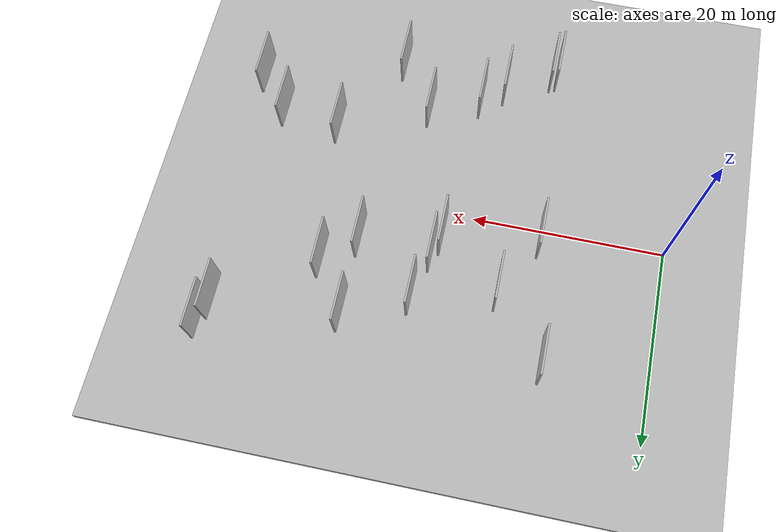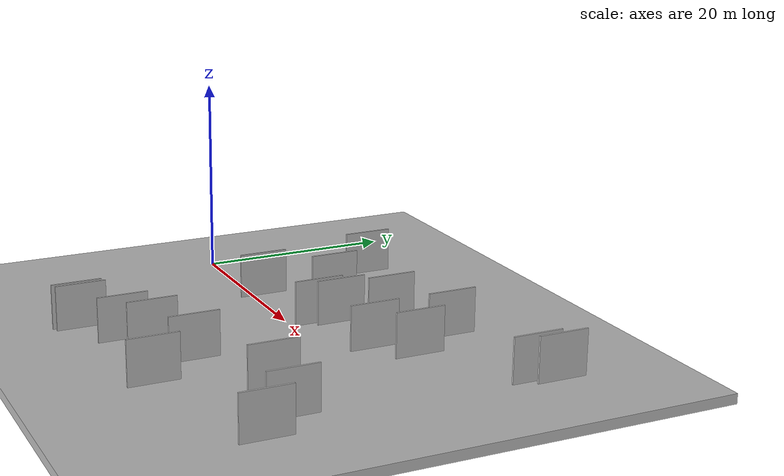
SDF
<?xml version="1.0" encoding="utf-8"?>

<sdf version="1.6">

   <world name="default">

      <gui fullscreen="0">

         <camera name="user_camera">

            <pose>-15 0 4.57585 0 0 0</pose>

            <view_controller>orbit</view_controller>

         </camera>

      </gui>

      <scene>

         <sky>

           <clouds>

             <speed>12</speed>

           </clouds>

         </sky>

         <ambient>0.4 0.4 0.4 1</ambient>

         <background>0.7 0.7 0.7 1</background>

         <shadows>1</shadows>

      </scene>

      <gravity>0 0 -9.8066</gravity>

      <magnetic_field>6e-06 2.3e-05 -4.2e-05</magnetic_field>

      <physics default="0" name="default_physics" type="ode">

         <ode>

            <solver>

               <type>quick</type>

               <iters>10</iters>

               <sor>1.0</sor>

               <use_dynamic_moi_rescaling>0</use_dynamic_moi_rescaling>

            </solver>

            <constraints>

               <cfm>0</cfm>

               <erp>0.2</erp>

               <contact_max_correcting_vel>100</contact_max_correcting_vel>

               <contact_surface_layer>0.001</contact_surface_layer>

            </constraints>

         </ode>

         <max_step_size>0.004</max_step_size>

         <real_time_factor>1</real_time_factor>

         <real_time_update_rate>250</real_time_update_rate>

      </physics>

      <light name="sun" type="directional">

         <cast_shadows>1</cast_shadows>

         <pose>0 0 10 0 0 0</pose>

         <diffuse>0.8 0.8 0.8 1</diffuse>

         <specular>0.2 0.2 0.2 1</specular>

         <attenuation>

            <range>1000</range>

            <constant>0.9</constant>

            <linear>0.01</linear>

            <quadratic>0.001</quadratic>

         </attenuation>

         <direction>-0.5 0.1 -0.9</direction>

      </light>

      <include>

         <name>ground_plane_1</name>

         <uri>model://HANNAS_ground_plane</uri>

         <pose>0 0 0  0 0 0</pose>

      </include>

      <include>

         <name>ground_plane_2</name>

         <uri>model://HANNAS_ground_plane</uri>

         <pose>100 0 0  0 0 0</pose>

      </include>

      <model name="HANNAS_wall_1">

         <static>1</static>

         <pose frame="">14.6025 -19.1012 0.0 0.000000 0.000000 1.570796</pose>

         <link name="link">

            <pose frame="">0 0 2.50 0 0 0</pose>

            <collision name="collision">

               <geometry>

                  <box>

                     <size>5.00 0.2 5.00</size>

                  </box>

               </geometry>

               <max_contacts>10</max_contacts>

               <surface>

                  <contact>

                     <ode/>

                  </contact>

                  <bounce/>

                  <friction>

                     <torsional>

                        <ode/>

                     </torsional>

                     <ode/>

                  </friction>

               </surface>

            </collision>

            <visual name="visual">

               <cast_shadows>0</cast_shadows>

               <geometry>

                  <box>

                     <size>5.00 0.2 5.00</size>

                  </box>

               </geometry>

               <material>

                  <script>

                     <uri>model://HANNAS_wall/materials/scripts</uri>

                     <uri>model://HANNAS_wall/materials/textures</uri>

                     <name>vrc/HANNAS_wall</name>

                  </script>

               </material>

            </visual>

            <self_collide>0</self_collide>

            <enable_wind>0</enable_wind>

            <kinematic>0</kinematic>

         </link>

      </model>

      <model name="HANNAS_wall_2">

         <static>1</static>

         <pose frame="">26.9996 -12.0410 0.0 0.000000 0.000000 1.570796</pose>

         <link name="link">

            <pose frame="">0 0 2.50 0 0 0</pose>

            <collision name="collision">

               <geometry>

                  <box>

                     <size>5.00 0.2 5.00</size>

                  </box>

               </geometry>

               <max_contacts>10</max_contacts>

               <surface>

                  <contact>

                     <ode/>

                  </contact>

                  <bounce/>

                  <friction>

                     <torsional>

                        <ode/>

                     </torsional>

                     <ode/>

                  </friction>

               </surface>

            </collision>

            <visual name="visual">

               <cast_shadows>0</cast_shadows>

               <geometry>

                  <box>

                     <size>5.00 0.2 5.00</size>

                  </box>

               </geometry>

               <material>

                  <script>

                     <uri>model://HANNAS_wall/materials/scripts</uri>

                     <uri>model://HANNAS_wall/materials/textures</uri>

                     <name>vrc/HANNAS_wall</name>

                  </script>

               </material>

            </visual>

            <self_collide>0</self_collide>

            <enable_wind>0</enable_wind>

            <kinematic>0</kinematic>

         </link>

      </model>

      <model name="HANNAS_wall_3">

         <static>1</static>

         <pose frame="">42.5704 -8.9961 0.0 0.000000 0.000000 1.570796</pose>

         <link name="link">

            <pose frame="">0 0 2.50 0 0 0</pose>

            <collision name="collision">

               <geometry>

                  <box>

                     <size>5.00 0.2 5.00</size>

                  </box>

               </geometry>

               <max_contacts>10</max_contacts>

               <surface>

                  <contact>

                     <ode/>

                  </contact>

                  <bounce/>

                  <friction>

                     <torsional>

                        <ode/>

                     </torsional>

                     <ode/>

                  </friction>

               </surface>

            </collision>

            <visual name="visual">

               <cast_shadows>0</cast_shadows>

               <geometry>

                  <box>

                     <size>5.00 0.2 5.00</size>

                  </box>

               </geometry>

               <material>

                  <script>

                     <uri>model://HANNAS_wall/materials/scripts</uri>

                     <uri>model://HANNAS_wall/materials/textures</uri>

                     <name>vrc/HANNAS_wall</name>

                  </script>

               </material>

            </visual>

            <self_collide>0</self_collide>

            <enable_wind>0</enable_wind>

            <kinematic>0</kinematic>

         </link>

      </model>

      <model name="HANNAS_wall_4">

         <static>1</static>

         <pose frame="">12.8453 0.7260 0.0 0.000000 0.000000 1.570796</pose>

         <link name="link">

            <pose frame="">0 0 2.50 0 0 0</pose>

            <collision name="collision">

               <geometry>

                  <box>

                     <size>5.00 0.2 5.00</size>

                  </box>

               </geometry>

               <max_contacts>10</max_contacts>

               <surface>

                  <contact>

                     <ode/>

                  </contact>

                  <bounce/>

                  <friction>

                     <torsional>

                        <ode/>

                     </torsional>

                     <ode/>

                  </friction>

               </surface>

            </collision>

            <visual name="visual">

               <cast_shadows>0</cast_shadows>

               <geometry>

                  <box>

                     <size>5.00 0.2 5.00</size>

                  </box>

               </geometry>

               <material>

                  <script>

                     <uri>model://HANNAS_wall/materials/scripts</uri>

                     <uri>model://HANNAS_wall/materials/textures</uri>

                     <name>vrc/HANNAS_wall</name>

                  </script>

               </material>

            </visual>

            <self_collide>0</self_collide>

            <enable_wind>0</enable_wind>

            <kinematic>0</kinematic>

         </link>

      </model>

      <model name="HANNAS_wall_5">

         <static>1</static>

         <pose frame="">14.0106 -19.3541 0.0 0.000000 0.000000 1.570796</pose>

         <link name="link">

            <pose frame="">0 0 2.50 0 0 0</pose>

            <collision name="collision">

               <geometry>

                  <box>

                     <size>5.00 0.2 5.00</size>

                  </box>

               </geometry>

               <max_contacts>10</max_contacts>

               <surface>

                  <contact>

                     <ode/>

                  </contact>

                  <bounce/>

                  <friction>

                     <torsional>

                        <ode/>

                     </torsional>

                     <ode/>

                  </friction>

               </surface>

            </collision>

            <visual name="visual">

               <cast_shadows>0</cast_shadows>

               <geometry>

                  <box>

                     <size>5.00 0.2 5.00</size>

                  </box>

               </geometry>

               <material>

                  <script>

                     <uri>model://HANNAS_wall/materials/scripts</uri>

                     <uri>model://HANNAS_wall/materials/textures</uri>

                     <name>vrc/HANNAS_wall</name>

                  </script>

               </material>

            </visual>

            <self_collide>0</self_collide>

            <enable_wind>0</enable_wind>

            <kinematic>0</kinematic>

         </link>

      </model>

      <model name="HANNAS_wall_6">

         <static>1</static>

         <pose frame="">44.9889 15.9512 0.0 0.000000 0.000000 1.570796</pose>

         <link name="link">

            <pose frame="">0 0 2.50 0 0 0</pose>

            <collision name="collision">

               <geometry>

                  <box>

                     <size>5.00 0.2 5.00</size>

                  </box>

               </geometry>

               <max_contacts>10</max_contacts>

               <surface>

                  <contact>

                     <ode/>

                  </contact>

                  <bounce/>

                  <friction>

                     <torsional>

                        <ode/>

                     </torsional>

                     <ode/>

                  </friction>

               </surface>

            </collision>

            <visual name="visual">

               <cast_shadows>0</cast_shadows>

               <geometry>

                  <box>

                     <size>5.00 0.2 5.00</size>

                  </box>

               </geometry>

               <material>

                  <script>

                     <uri>model://HANNAS_wall/materials/scripts</uri>

                     <uri>model://HANNAS_wall/materials/textures</uri>

                     <name>vrc/HANNAS_wall</name>

                  </script>

               </material>

            </visual>

            <self_collide>0</self_collide>

            <enable_wind>0</enable_wind>

            <kinematic>0</kinematic>

         </link>

      </model>

      <model name="HANNAS_wall_7">

         <static>1</static>

         <pose frame="">44.2460 13.7810 0.0 0.000000 0.000000 1.570796</pose>

         <link name="link">

            <pose frame="">0 0 2.50 0 0 0</pose>

            <collision name="collision">

               <geometry>

                  <box>

                     <size>5.00 0.2 5.00</size>

                  </box>

               </geometry>

               <max_contacts>10</max_contacts>

               <surface>

                  <contact>

                     <ode/>

                  </contact>

                  <bounce/>

                  <friction>

                     <torsional>

                        <ode/>

                     </torsional>

                     <ode/>

                  </friction>

               </surface>

            </collision>

            <visual name="visual">

               <cast_shadows>0</cast_shadows>

               <geometry>

                  <box>

                     <size>5.00 0.2 5.00</size>

                  </box>

               </geometry>

               <material>

                  <script>

                     <uri>model://HANNAS_wall/materials/scripts</uri>

                     <uri>model://HANNAS_wall/materials/textures</uri>

                     <name>vrc/HANNAS_wall</name>

                  </script>

               </material>

            </visual>

            <self_collide>0</self_collide>

            <enable_wind>0</enable_wind>

            <kinematic>0</kinematic>

         </link>

      </model>

      <model name="HANNAS_wall_8">

         <static>1</static>

         <pose frame="">19.3815 -16.4159 0.0 0.000000 0.000000 1.570796</pose>

         <link name="link">

            <pose frame="">0 0 2.50 0 0 0</pose>

            <collision name="collision">

               <geometry>

                  <box>

                     <size>5.00 0.2 5.00</size>

                  </box>

               </geometry>

               <max_contacts>10</max_contacts>

               <surface>

                  <contact>

                     <ode/>

                  </contact>

                  <bounce/>

                  <friction>

                     <torsional>

                        <ode/>

                     </torsional>

                     <ode/>

                  </friction>

               </surface>

            </collision>

            <visual name="visual">

               <cast_shadows>0</cast_shadows>

               <geometry>

                  <box>

                     <size>5.00 0.2 5.00</size>

                  </box>

               </geometry>

               <material>

                  <script>

                     <uri>model://HANNAS_wall/materials/scripts</uri>

                     <uri>model://HANNAS_wall/materials/textures</uri>

                     <name>vrc/HANNAS_wall</name>

                  </script>

               </material>

            </visual>

            <self_collide>0</self_collide>

            <enable_wind>0</enable_wind>

            <kinematic>0</kinematic>

         </link>

      </model>

      <model name="HANNAS_wall_9">

         <static>1</static>

         <pose frame="">34.5077 7.3029 0.0 0.000000 0.000000 1.570796</pose>

         <link name="link">

            <pose frame="">0 0 2.50 0 0 0</pose>

            <collision name="collision">

               <geometry>

                  <box>

                     <size>5.00 0.2 5.00</size>

                  </box>

               </geometry>

               <max_contacts>10</max_contacts>

               <surface>

                  <contact>

                     <ode/>

                  </contact>

                  <bounce/>

                  <friction>

                     <torsional>

                        <ode/>

                     </torsional>

                     <ode/>

                  </friction>

               </surface>

            </collision>

            <visual name="visual">

               <cast_shadows>0</cast_shadows>

               <geometry>

                  <box>

                     <size>5.00 0.2 5.00</size>

                  </box>

               </geometry>

               <material>

                  <script>

                     <uri>model://HANNAS_wall/materials/scripts</uri>

                     <uri>model://HANNAS_wall/materials/textures</uri>

                     <name>vrc/HANNAS_wall</name>

                  </script>

               </material>

            </visual>

            <self_collide>0</self_collide>

            <enable_wind>0</enable_wind>

            <kinematic>0</kinematic>

         </link>

      </model>

      <model name="HANNAS_wall_10">

         <static>1</static>

         <pose frame="">21.7123 -14.2718 0.0 0.000000 0.000000 1.570796</pose>

         <link name="link">

            <pose frame="">0 0 2.50 0 0 0</pose>

            <collision name="collision">

               <geometry>

                  <box>

                     <size>5.00 0.2 5.00</size>

                  </box>

               </geometry>

               <max_contacts>10</max_contacts>

               <surface>

                  <contact>

                     <ode/>

                  </contact>

                  <bounce/>

                  <friction>

                     <torsional>

                        <ode/>

                     </torsional>

                     <ode/>

                  </friction>

               </surface>

            </collision>

            <visual name="visual">

               <cast_shadows>0</cast_shadows>

               <geometry>

                  <box>

                     <size>5.00 0.2 5.00</size>

                  </box>

               </geometry>

               <material>

                  <script>

                     <uri>model://HANNAS_wall/materials/scripts</uri>

                     <uri>model://HANNAS_wall/materials/textures</uri>

                     <name>vrc/HANNAS_wall</name>

                  </script>

               </material>

            </visual>

            <self_collide>0</self_collide>

            <enable_wind>0</enable_wind>

            <kinematic>0</kinematic>

         </link>

      </model>

      <model name="HANNAS_wall_11">

         <static>1</static>

         <pose frame="">16.2055 7.2127 0.0 0.000000 0.000000 1.570796</pose>

         <link name="link">

            <pose frame="">0 0 2.50 0 0 0</pose>

            <collision name="collision">

               <geometry>

                  <box>

                     <size>5.00 0.2 5.00</size>

                  </box>

               </geometry>

               <max_contacts>10</max_contacts>

               <surface>

                  <contact>

                     <ode/>

                  </contact>

                  <bounce/>

                  <friction>

                     <torsional>

                        <ode/>

                     </torsional>

                     <ode/>

                  </friction>

               </surface>

            </collision>

            <visual name="visual">

               <cast_shadows>0</cast_shadows>

               <geometry>

                  <box>

                     <size>5.00 0.2 5.00</size>

                  </box>

               </geometry>

               <material>

                  <script>

                     <uri>model://HANNAS_wall/materials/scripts</uri>

                     <uri>model://HANNAS_wall/materials/textures</uri>

                     <name>vrc/HANNAS_wall</name>

                  </script>

               </material>

            </visual>

            <self_collide>0</self_collide>

            <enable_wind>0</enable_wind>

            <kinematic>0</kinematic>

         </link>

      </model>

      <model name="HANNAS_wall_12">

         <static>1</static>

         <pose frame="">24.6696 9.3863 0.0 0.000000 0.000000 1.570796</pose>

         <link name="link">

            <pose frame="">0 0 2.50 0 0 0</pose>

            <collision name="collision">

               <geometry>

                  <box>

                     <size>5.00 0.2 5.00</size>

                  </box>

               </geometry>

               <max_contacts>10</max_contacts>

               <surface>

                  <contact>

                     <ode/>

                  </contact>

                  <bounce/>

                  <friction>

                     <torsional>

                        <ode/>

                     </torsional>

                     <ode/>

                  </friction>

               </surface>

            </collision>

            <visual name="visual">

               <cast_shadows>0</cast_shadows>

               <geometry>

                  <box>

                     <size>5.00 0.2 5.00</size>

                  </box>

               </geometry>

               <material>

                  <script>

                     <uri>model://HANNAS_wall/materials/scripts</uri>

                     <uri>model://HANNAS_wall/materials/textures</uri>

                     <name>vrc/HANNAS_wall</name>

                  </script>

               </material>

            </visual>

            <self_collide>0</self_collide>

            <enable_wind>0</enable_wind>

            <kinematic>0</kinematic>

         </link>

      </model>

      <model name="HANNAS_wall_13">

         <static>1</static>

         <pose frame="">30.8649 -17.2868 0.0 0.000000 0.000000 1.570796</pose>

         <link name="link">

            <pose frame="">0 0 2.50 0 0 0</pose>

            <collision name="collision">

               <geometry>

                  <box>

                     <size>5.00 0.2 5.00</size>

                  </box>

               </geometry>

               <max_contacts>10</max_contacts>

               <surface>

                  <contact>

                     <ode/>

                  </contact>

                  <bounce/>

                  <friction>

                     <torsional>

                        <ode/>

                     </torsional>

                     <ode/>

                  </friction>

               </surface>

            </collision>

            <visual name="visual">

               <cast_shadows>0</cast_shadows>

               <geometry>

                  <box>

                     <size>5.00 0.2 5.00</size>

                  </box>

               </geometry>

               <material>

                  <script>

                     <uri>model://HANNAS_wall/materials/scripts</uri>

                     <uri>model://HANNAS_wall/materials/textures</uri>

                     <name>vrc/HANNAS_wall</name>

                  </script>

               </material>

            </visual>

            <self_collide>0</self_collide>

            <enable_wind>0</enable_wind>

            <kinematic>0</kinematic>

         </link>

      </model>

      <model name="HANNAS_wall_14">

         <static>1</static>

         <pose frame="">45.7720 -12.7539 0.0 0.000000 0.000000 1.570796</pose>

         <link name="link">

            <pose frame="">0 0 2.50 0 0 0</pose>

            <collision name="collision">

               <geometry>

                  <box>

                     <size>5.00 0.2 5.00</size>

                  </box>

               </geometry>

               <max_contacts>10</max_contacts>

               <surface>

                  <contact>

                     <ode/>

                  </contact>

                  <bounce/>

                  <friction>

                     <torsional>

                        <ode/>

                     </torsional>

                     <ode/>

                  </friction>

               </surface>

            </collision>

            <visual name="visual">

               <cast_shadows>0</cast_shadows>

               <geometry>

                  <box>

                     <size>5.00 0.2 5.00</size>

                  </box>

               </geometry>

               <material>

                  <script>

                     <uri>model://HANNAS_wall/materials/scripts</uri>

                     <uri>model://HANNAS_wall/materials/textures</uri>

                     <name>vrc/HANNAS_wall</name>

                  </script>

               </material>

            </visual>

            <self_collide>0</self_collide>

            <enable_wind>0</enable_wind>

            <kinematic>0</kinematic>

         </link>

      </model>

      <model name="HANNAS_wall_15">

         <static>1</static>

         <pose frame="">22.7996 2.4297 0.0 0.000000 0.000000 1.570796</pose>

         <link name="link">

            <pose frame="">0 0 2.50 0 0 0</pose>

            <collision name="collision">

               <geometry>

                  <box>

                     <size>5.00 0.2 5.00</size>

                  </box>

               </geometry>

               <max_contacts>10</max_contacts>

               <surface>

                  <contact>

                     <ode/>

                  </contact>

                  <bounce/>

                  <friction>

                     <torsional>

                        <ode/>

                     </torsional>

                     <ode/>

                  </friction>

               </surface>

            </collision>

            <visual name="visual">

               <cast_shadows>0</cast_shadows>

               <geometry>

                  <box>

                     <size>5.00 0.2 5.00</size>

                  </box>

               </geometry>

               <material>

                  <script>

                     <uri>model://HANNAS_wall/materials/scripts</uri>

                     <uri>model://HANNAS_wall/materials/textures</uri>

                     <name>vrc/HANNAS_wall</name>

                  </script>

               </material>

            </visual>

            <self_collide>0</self_collide>

            <enable_wind>0</enable_wind>

            <kinematic>0</kinematic>

         </link>

      </model>

      <model name="HANNAS_wall_16">

         <static>1</static>

         <pose frame="">31.2163 12.4888 0.0 0.000000 0.000000 1.570796</pose>

         <link name="link">

            <pose frame="">0 0 2.50 0 0 0</pose>

            <collision name="collision">

               <geometry>

                  <box>

                     <size>5.00 0.2 5.00</size>

                  </box>

               </geometry>

               <max_contacts>10</max_contacts>

               <surface>

                  <contact>

                     <ode/>

                  </contact>

                  <bounce/>

                  <friction>

                     <torsional>

                        <ode/>

                     </torsional>

                     <ode/>

                  </friction>

               </surface>

            </collision>

            <visual name="visual">

               <cast_shadows>0</cast_shadows>

               <geometry>

                  <box>

                     <size>5.00 0.2 5.00</size>

                  </box>

               </geometry>

               <material>

                  <script>

                     <uri>model://HANNAS_wall/materials/scripts</uri>

                     <uri>model://HANNAS_wall/materials/textures</uri>

                     <name>vrc/HANNAS_wall</name>

                  </script>

               </material>

            </visual>

            <self_collide>0</self_collide>

            <enable_wind>0</enable_wind>

            <kinematic>0</kinematic>

         </link>

      </model>

      <model name="HANNAS_wall_17">

         <static>1</static>

         <pose frame="">36.3836 -8.1371 0.0 0.000000 0.000000 1.570796</pose>

         <link name="link">

            <pose frame="">0 0 2.50 0 0 0</pose>

            <collision name="collision">

               <geometry>

                  <box>

                     <size>5.00 0.2 5.00</size>

                  </box>

               </geometry>

               <max_contacts>10</max_contacts>

               <surface>

                  <contact>

                     <ode/>

                  </contact>

                  <bounce/>

                  <friction>

                     <torsional>

                        <ode/>

                     </torsional>

                     <ode/>

                  </friction>

               </surface>

            </collision>

            <visual name="visual">

               <cast_shadows>0</cast_shadows>

               <geometry>

                  <box>

                     <size>5.00 0.2 5.00</size>

                  </box>

               </geometry>

               <material>

                  <script>

                     <uri>model://HANNAS_wall/materials/scripts</uri>

                     <uri>model://HANNAS_wall/materials/textures</uri>

                     <name>vrc/HANNAS_wall</name>

                  </script>

               </material>

            </visual>

            <self_collide>0</self_collide>

            <enable_wind>0</enable_wind>

            <kinematic>0</kinematic>

         </link>

      </model>

      <model name="HANNAS_wall_18">

         <static>1</static>

         <pose frame="">10.7502 13.6766 0.0 0.000000 0.000000 1.570796</pose>

         <link name="link">

            <pose frame="">0 0 2.50 0 0 0</pose>

            <collision name="collision">

               <geometry>

                  <box>

                     <size>5.00 0.2 5.00</size>

                  </box>

               </geometry>

               <max_contacts>10</max_contacts>

               <surface>

                  <contact>

                     <ode/>

                  </contact>

                  <bounce/>

                  <friction>

                     <torsional>

                        <ode/>

                     </torsional>

                     <ode/>

                  </friction>

               </surface>

            </collision>

            <visual name="visual">

               <cast_shadows>0</cast_shadows>

               <geometry>

                  <box>

                     <size>5.00 0.2 5.00</size>

                  </box>

               </geometry>

               <material>

                  <script>

                     <uri>model://HANNAS_wall/materials/scripts</uri>

                     <uri>model://HANNAS_wall/materials/textures</uri>

                     <name>vrc/HANNAS_wall</name>

                  </script>

               </material>

            </visual>

            <self_collide>0</self_collide>

            <enable_wind>0</enable_wind>

            <kinematic>0</kinematic>

         </link>

      </model>

      <model name="HANNAS_wall_19">

         <static>1</static>

         <pose frame="">31.1416 4.3175 0.0 0.000000 0.000000 1.570796</pose>

         <link name="link">

            <pose frame="">0 0 2.50 0 0 0</pose>

            <collision name="collision">

               <geometry>

                  <box>

                     <size>5.00 0.2 5.00</size>

                  </box>

               </geometry>

               <max_contacts>10</max_contacts>

               <surface>

                  <contact>

                     <ode/>

                  </contact>

                  <bounce/>

                  <friction>

                     <torsional>

                        <ode/>

                     </torsional>

                     <ode/>

                  </friction>

               </surface>

            </collision>

            <visual name="visual">

               <cast_shadows>0</cast_shadows>

               <geometry>

                  <box>

                     <size>5.00 0.2 5.00</size>

                  </box>

               </geometry>

               <material>

                  <script>

                     <uri>model://HANNAS_wall/materials/scripts</uri>

                     <uri>model://HANNAS_wall/materials/textures</uri>

                     <name>vrc/HANNAS_wall</name>

                  </script>

               </material>

            </visual>

            <self_collide>0</self_collide>

            <enable_wind>0</enable_wind>

            <kinematic>0</kinematic>

         </link>

      </model>

      <model name="HANNAS_wall_20">

         <static>1</static>

         <pose frame="">23.5306 4.4632 0.0 0.000000 0.000000 1.570796</pose>

         <link name="link">

            <pose frame="">0 0 2.50 0 0 0</pose>

            <collision name="collision">

               <geometry>

                  <box>

                     <size>5.00 0.2 5.00</size>

                  </box>

               </geometry>

               <max_contacts>10</max_contacts>

               <surface>

                  <contact>

                     <ode/>

                  </contact>

                  <bounce/>

                  <friction>

                     <torsional>

                        <ode/>

                     </torsional>

                     <ode/>

                  </friction>

               </surface>

            </collision>

            <visual name="visual">

               <cast_shadows>0</cast_shadows>

               <geometry>

                  <box>

                     <size>5.00 0.2 5.00</size>

                  </box>

               </geometry>

               <material>

                  <script>

                     <uri>model://HANNAS_wall/materials/scripts</uri>

                     <uri>model://HANNAS_wall/materials/textures</uri>

                     <name>vrc/HANNAS_wall</name>

                  </script>

               </material>

            </visual>

            <self_collide>0</self_collide>

            <enable_wind>0</enable_wind>

            <kinematic>0</kinematic>

         </link>

      </model>

   </world>

</sdf>

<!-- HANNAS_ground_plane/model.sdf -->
<sdf version="1.4">
<model name="HANNAS_ground_plane">
  <static>true</static>
    <link name="link">
      <collision name="collision">
        <geometry>
          <plane>
            <normal>0 0 1</normal>
            <size>1000 1000</size>
          </plane>
        </geometry>
        <surface>
          <friction>
            <ode>
              <mu>100</mu>
              <mu2>50</mu2>
            </ode>
          </friction>
        </surface>
      </collision>
      <visual name="visual">
        <cast_shadows>false</cast_shadows>
        <geometry>
          <plane>
            <normal>0 0 1</normal>
            <size>1000 1000</size>
          </plane>
        </geometry>
        <material>
          <script>
            <uri>model://HANNAS_ground_plane/materials/scripts/HANNAS_ground_plane.material</uri>
	    <uri>model://HANNAS_ground_plane/materials/textures</uri>
            <name>HANNASGroundPlane/Image</name>
          </script>
        </material>
      </visual>
    </link>
  </model>
</sdf>
